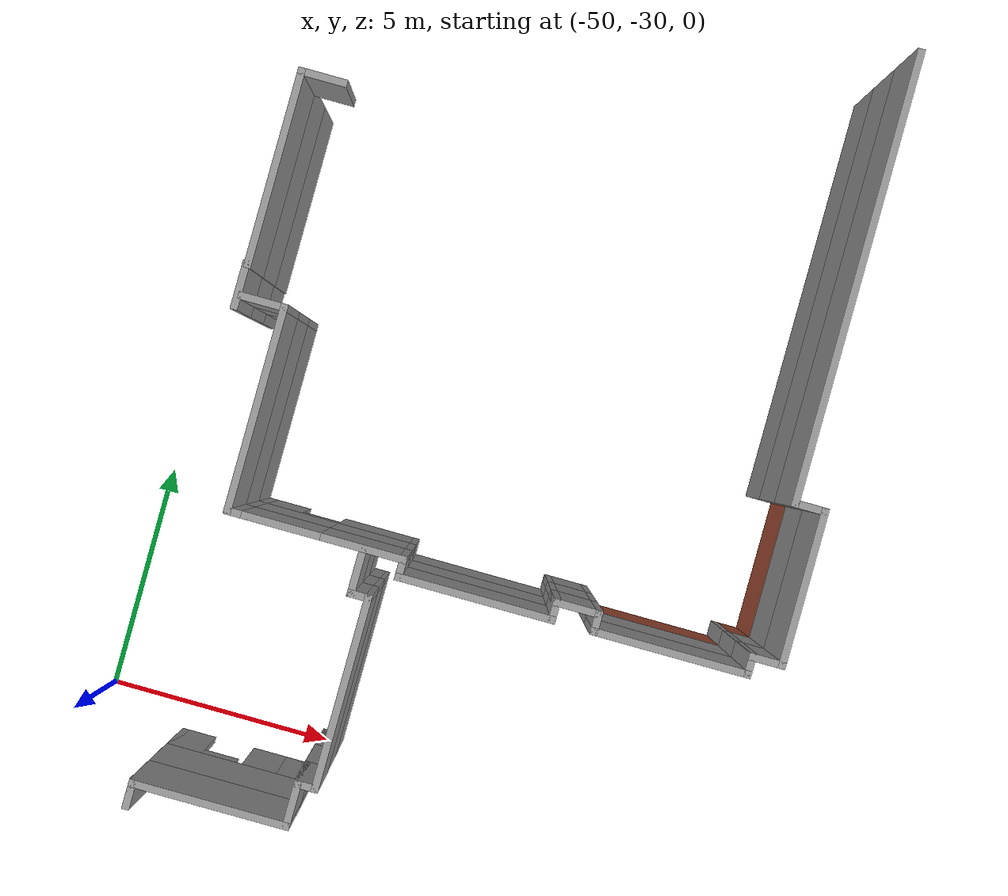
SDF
<sdf version="1.7">
 <model name="mapagazebo">
  <pose>-4.67869 9.01252 0 0 -0 0</pose>
  <link name="Wall_10">
   <collision name="Wall_10_Collision">
    <geometry><box><size>0.75 0.15 2.5</size></box></geometry>
    <pose>0 0 1.25 0 -0 0</pose>
   </collision>
   <visual name="Wall_10_Visual">
    <pose>0 0 1.25 0 -0 0</pose>
    <geometry><box><size>0.75 0.15 2.5</size></box></geometry>
    <material>
     <script><uri>file://media/materials/scripts/gazebo.material</uri><name>Gazebo/Bricks</name></script>
     <ambient>1 1 1 1</ambient>
    </material>
    <meta><layer>0</layer></meta>
   </visual>
   <pose>-32.2224 -34.1047 0 0 -0 3.14159</pose>
  </link>
  <link name="Wall_11">
   <collision name="Wall_11_Collision">
    <geometry><box><size>0.5 0.15 2.5</size></box></geometry>
    <pose>0 0 1.25 0 -0 0</pose>
   </collision>
   <visual name="Wall_11_Visual">
    <pose>0 0 1.25 0 -0 0</pose>
    <geometry><box><size>0.5 0.15 2.5</size></box></geometry>
    <material>
     <script><uri>file://media/materials/scripts/gazebo.material</uri><name>Gazebo/Grey</name></script>
     <ambient>1 1 1 1</ambient>
    </material>
    <meta><layer>0</layer></meta>
   </visual>
   <pose>-32.5224 -34.2797 0 0 -0 -1.5708</pose>
  </link>
  <link name="Wall_12">
   <collision name="Wall_12_Collision">
    <geometry><box><size>3.25 0.15 2.5</size></box></geometry>
    <pose>0 0 1.25 0 -0 0</pose>
   </collision>
   <visual name="Wall_12_Visual">
    <pose>0 0 1.25 0 -0 0</pose>
    <geometry><box><size>3.25 0.15 2.5</size></box></geometry>
    <material>
     <script><uri>file://media/materials/scripts/gazebo.material</uri><name>Gazebo/Bricks</name></script>
     <ambient>1 1 1 1</ambient>
    </material>
    <meta><layer>0</layer></meta>
   </visual>
   <pose>-34.0724 -34.4547 0 0 -0 3.14159</pose>
  </link>
  <link name="Wall_13">
   <collision name="Wall_13_Collision">
    <geometry><box><size>0.5 0.15 2.5</size></box></geometry>
    <pose>0 0 1.25 0 -0 0</pose>
   </collision>
   <visual name="Wall_13_Visual">
    <pose>0 0 1.25 0 -0 0</pose>
    <geometry><box><size>0.5 0.15 2.5</size></box></geometry>
    <material>
     <script><uri>file://media/materials/scripts/gazebo.material</uri><name>Gazebo/Grey</name></script>
     <ambient>1 1 1 1</ambient>
    </material>
    <meta><layer>0</layer></meta>
   </visual>
   <pose>-35.6224 -34.2797 0 0 -0 1.5708</pose>
  </link>
  <link name="Wall_1398">
   <collision name="Wall_1398_Collision">
    <geometry><box><size>9.25 0.15 2.5</size></box></geometry>
    <pose>0 0 1.25 0 -0 0</pose>
   </collision>
   <visual name="Wall_1398_Visual">
    <pose>0 0 1.25 0 -0 0</pose>
    <geometry><box><size>9.25 0.15 2.5</size></box></geometry>
    <material>
     <script><uri>file://media/materials/scripts/gazebo.material</uri><name>Gazebo/Grey</name></script>
     <ambient>1 1 1 1</ambient>
    </material>
    <meta><layer>2</layer></meta>
   </visual>
   <pose>-32.5224 -26.4547 5 0 -0 -1.5708</pose>
  </link>
  <link name="Wall_1399">
   <collision name="Wall_1399_Collision">
    <geometry><box><size>0.75 0.15 2.5</size></box></geometry>
    <pose>0 0 1.25 0 -0 0</pose>
   </collision>
   <visual name="Wall_1399_Visual">
    <pose>0 0 1.25 0 -0 0</pose>
    <geometry><box><size>0.75 0.15 2.5</size></box></geometry>
    <material>
     <script><uri>file://media/materials/scripts/gazebo.material</uri><name>Gazebo/Grey</name></script>
     <ambient>1 1 1 1</ambient>
    </material>
    <meta><layer>2</layer></meta>
   </visual>
   <pose>-32.2224 -31.0047 5 0 -0 0</pose>
  </link>
  <link name="Wall_14">
   <collision name="Wall_14_Collision">
    <geometry><box><size>1 0.15 2.5</size></box></geometry>
    <pose>0 0 1.25 0 -0 0</pose>
   </collision>
   <visual name="Wall_14_Visual">
    <pose>0 0 1.25 0 -0 0</pose>
    <geometry><box><size>1 0.15 2.5</size></box></geometry>
    <material>
     <script><uri>file://media/materials/scripts/gazebo.material</uri><name>Gazebo/Grey</name></script>
     <ambient>1 1 1 1</ambient>
    </material>
    <meta><layer>0</layer></meta>
   </visual>
   <pose>-36.0474 -34.1047 0 0 -0 3.14159</pose>
  </link>
  <link name="Wall_1400">
   <collision name="Wall_1400_Collision">
    <geometry><box><size>3.25 0.15 2.5</size></box></geometry>
    <pose>0 0 1.25 0 -0 0</pose>
   </collision>
   <visual name="Wall_1400_Visual">
    <pose>0 0 1.25 0 -0 0</pose>
    <geometry><box><size>3.25 0.15 2.5</size></box></geometry>
    <material>
     <script><uri>file://media/materials/scripts/gazebo.material</uri><name>Gazebo/Grey</name></script>
     <ambient>1 1 1 1</ambient>
    </material>
    <meta><layer>2</layer></meta>
   </visual>
   <pose>-31.9224 -32.5547 5 0 -0 -1.5708</pose>
  </link>
  <link name="Wall_1401">
   <collision name="Wall_1401_Collision">
    <geometry><box><size>0.75 0.15 2.5</size></box></geometry>
    <pose>0 0 1.25 0 -0 0</pose>
   </collision>
   <visual name="Wall_1401_Visual">
    <pose>0 0 1.25 0 -0 0</pose>
    <geometry><box><size>0.75 0.15 2.5</size></box></geometry>
    <material>
     <script><uri>file://media/materials/scripts/gazebo.material</uri><name>Gazebo/Grey</name></script>
     <ambient>1 1 1 1</ambient>
    </material>
    <meta><layer>2</layer></meta>
   </visual>
   <pose>-32.2224 -34.1047 5 0 -0 3.14159</pose>
  </link>
  <link name="Wall_1402">
   <collision name="Wall_1402_Collision">
    <geometry><box><size>0.5 0.15 2.5</size></box></geometry>
    <pose>0 0 1.25 0 -0 0</pose>
   </collision>
   <visual name="Wall_1402_Visual">
    <pose>0 0 1.25 0 -0 0</pose>
    <geometry><box><size>0.5 0.15 2.5</size></box></geometry>
    <material>
     <script><uri>file://media/materials/scripts/gazebo.material</uri><name>Gazebo/Grey</name></script>
     <ambient>1 1 1 1</ambient>
    </material>
    <meta><layer>2</layer></meta>
   </visual>
   <pose>-32.5224 -34.2797 5 0 -0 -1.5708</pose>
  </link>
  <link name="Wall_1403">
   <collision name="Wall_1403_Collision">
    <geometry><box><size>3.25 0.15 2.5</size></box></geometry>
    <pose>0 0 1.25 0 -0 0</pose>
   </collision>
   <visual name="Wall_1403_Visual">
    <pose>0 0 1.25 0 -0 0</pose>
    <geometry><box><size>3.25 0.15 2.5</size></box></geometry>
    <material>
     <script><uri>file://media/materials/scripts/gazebo.material</uri><name>Gazebo/Grey</name></script>
     <ambient>1 1 1 1</ambient>
    </material>
    <meta><layer>2</layer></meta>
   </visual>
   <pose>-34.0724 -34.4547 5 0 -0 3.14159</pose>
  </link>
  <link name="Wall_1404">
   <collision name="Wall_1404_Collision">
    <geometry><box><size>0.5 0.15 2.5</size></box></geometry>
    <pose>0 0 1.25 0 -0 0</pose>
   </collision>
   <visual name="Wall_1404_Visual">
    <pose>0 0 1.25 0 -0 0</pose>
    <geometry><box><size>0.5 0.15 2.5</size></box></geometry>
    <material>
     <script><uri>file://media/materials/scripts/gazebo.material</uri><name>Gazebo/Grey</name></script>
     <ambient>1 1 1 1</ambient>
    </material>
    <meta><layer>2</layer></meta>
   </visual>
   <pose>-35.6224 -34.2797 5 0 -0 1.5708</pose>
  </link>
  <link name="Wall_1405">
   <collision name="Wall_1405_Collision">
    <geometry><box><size>1 0.15 2.5</size></box></geometry>
    <pose>0 0 1.25 0 -0 0</pose>
   </collision>
   <visual name="Wall_1405_Visual">
    <pose>0 0 1.25 0 -0 0</pose>
    <geometry><box><size>1 0.15 2.5</size></box></geometry>
    <material>
     <script><uri>file://media/materials/scripts/gazebo.material</uri><name>Gazebo/Grey</name></script>
     <ambient>1 1 1 1</ambient>
    </material>
    <meta><layer>2</layer></meta>
   </visual>
   <pose>-36.0474 -34.1047 5 0 -0 3.14159</pose>
  </link>
  <link name="Wall_1406">
   <collision name="Wall_1406_Collision">
    <geometry><box><size>0.5 0.15 2.5</size></box></geometry>
    <pose>0 0 1.25 0 -0 0</pose>
   </collision>
   <visual name="Wall_1406_Visual">
    <pose>0 0 1.25 0 -0 0</pose>
    <geometry><box><size>0.5 0.15 2.5</size></box></geometry>
    <material>
     <script><uri>file://media/materials/scripts/gazebo.material</uri><name>Gazebo/Grey</name></script>
     <ambient>1 1 1 1</ambient>
    </material>
    <meta><layer>2</layer></meta>
   </visual>
   <pose>-36.4724 -34.2797 5 0 -0 -1.5708</pose>
  </link>
  <link name="Wall_1407">
   <collision name="Wall_1407_Collision">
    <geometry><box><size>3.25 0.15 2.5</size></box></geometry>
    <pose>0 0 1.25 0 -0 0</pose>
   </collision>
   <visual name="Wall_1407_Visual">
    <pose>0 0 1.25 0 -0 0</pose>
    <geometry><box><size>3.25 0.15 2.5</size></box></geometry>
    <material>
     <script><uri>file://media/materials/scripts/gazebo.material</uri><name>Gazebo/Grey</name></script>
     <ambient>1 1 1 1</ambient>
    </material>
    <meta><layer>2</layer></meta>
   </visual>
   <pose>-38.0224 -34.4547 5 0 -0 3.14159</pose>
  </link>
  <link name="Wall_1408">
   <collision name="Wall_1408_Collision">
    <geometry><box><size>0.5 0.15 2.5</size></box></geometry>
    <pose>0 0 1.25 0 -0 0</pose>
   </collision>
   <visual name="Wall_1408_Visual">
    <pose>0 0 1.25 0 -0 0</pose>
    <geometry><box><size>0.5 0.15 2.5</size></box></geometry>
    <material>
     <script><uri>file://media/materials/scripts/gazebo.material</uri><name>Gazebo/Grey</name></script>
     <ambient>1 1 1 1</ambient>
    </material>
    <meta><layer>2</layer></meta>
   </visual>
   <pose>-39.5724 -34.2797 5 0 -0 1.5708</pose>
  </link>
  <link name="Wall_1409">
   <collision name="Wall_1409_Collision">
    <geometry><box><size>1.75 0.15 2.5</size></box></geometry>
    <pose>0 0 1.25 0 -0 0</pose>
   </collision>
   <visual name="Wall_1409_Visual">
    <pose>0 0 1.25 0 -0 0</pose>
    <geometry><box><size>1.75 0.15 2.5</size></box></geometry>
    <material>
     <script><uri>file://media/materials/scripts/gazebo.material</uri><name>Gazebo/Grey</name></script>
     <ambient>1 1 1 1</ambient>
    </material>
    <meta><layer>2</layer></meta>
   </visual>
   <pose>-40.3724 -34.1047 5 0 -0 3.14159</pose>
  </link>
  <link name="Wall_1410">
   <collision name="Wall_1410_Collision">
    <geometry><box><size>1.75 0.15 2.5</size></box></geometry>
    <pose>0 0 1.25 0 -0 0</pose>
   </collision>
   <visual name="Wall_1410_Visual">
    <pose>0 0 1.25 0 -0 0</pose>
    <geometry><box><size>1.75 0.15 2.5</size></box></geometry>
    <material>
     <script><uri>file://media/materials/scripts/gazebo.material</uri><name>Gazebo/Grey</name></script>
     <ambient>1 1 1 1</ambient>
    </material>
    <meta><layer>2</layer></meta>
   </visual>
   <pose>-41.9724 -34.1047 5 0 -0 3.14159</pose>
  </link>
  <link name="Wall_1411">
   <collision name="Wall_1411_Collision">
    <geometry><box><size>0.5 0.15 2.5</size></box></geometry>
    <pose>0 0 1.25 0 -0 0</pose>
   </collision>
   <visual name="Wall_1411_Visual">
    <pose>0 0 1.25 0 -0 0</pose>
    <geometry><box><size>0.5 0.15 2.5</size></box></geometry>
    <material>
     <script><uri>file://media/materials/scripts/gazebo.material</uri><name>Gazebo/Grey</name></script>
     <ambient>1 1 1 1</ambient>
    </material>
    <meta><layer>2</layer></meta>
   </visual>
   <pose>-42.9474 -34.1047 5 0 -0 3.14159</pose>
  </link>
  <link name="Wall_1412">
   <collision name="Wall_1412_Collision">
    <geometry><box><size>4.25 0.15 2.5</size></box></geometry>
    <pose>0 0 1.25 0 -0 0</pose>
   </collision>
   <visual name="Wall_1412_Visual">
    <pose>0 0 1.25 0 -0 0</pose>
    <geometry><box><size>4.25 0.15 2.5</size></box></geometry>
    <material>
     <script><uri>file://media/materials/scripts/gazebo.material</uri><name>Gazebo/Grey</name></script>
     <ambient>1 1 1 1</ambient>
    </material>
    <meta><layer>2</layer></meta>
   </visual>
   <pose>-43.1224 -32.0547 5 0 -0 1.5708</pose>
  </link>
  <link name="Wall_1413">
   <collision name="Wall_1413_Collision">
    <geometry><box><size>1 0.15 2.5</size></box></geometry>
    <pose>0 0 1.25 0 -0 0</pose>
   </collision>
   <visual name="Wall_1413_Visual">
    <pose>0 0 1.25 0 -0 0</pose>
    <geometry><box><size>1 0.15 2.5</size></box></geometry>
    <material>
     <script><uri>file://media/materials/scripts/gazebo.material</uri><name>Gazebo/Grey</name></script>
     <ambient>1 1 1 1</ambient>
    </material>
    <meta><layer>2</layer></meta>
   </visual>
   <pose>-43.5474 -30.0047 5 0 -0 3.14159</pose>
  </link>
  <link name="Wall_1414">
   <collision name="Wall_1414_Collision">
    <geometry><box><size>1 0.15 2.5</size></box></geometry>
    <pose>0 0 1.25 0 -0 0</pose>
   </collision>
   <visual name="Wall_1414_Visual">
    <pose>0 0 1.25 0 -0 0</pose>
    <geometry><box><size>1 0.15 2.5</size></box></geometry>
    <material>
     <script><uri>file://media/materials/scripts/gazebo.material</uri><name>Gazebo/Grey</name></script>
     <ambient>1 1 1 1</ambient>
    </material>
    <meta><layer>2</layer></meta>
   </visual>
   <pose>-44.0592 -29.8047 5 0 -0 1.5708</pose>
  </link>
  <link name="Wall_1415">
   <collision name="Wall_1415_Collision">
    <geometry><box><size>4.04328 0.15 2.5</size></box></geometry>
    <pose>0 0 1.25 0 -0 0</pose>
   </collision>
   <visual name="Wall_1415_Visual">
    <pose>0 0 1.25 0 -0 0</pose>
    <geometry><box><size>4.04328 0.15 2.5</size></box></geometry>
    <material>
     <script><uri>file://media/materials/scripts/gazebo.material</uri><name>Gazebo/Grey</name></script>
     <ambient>1 1 1 1</ambient>
    </material>
    <meta><layer>2</layer></meta>
   </visual>
   <pose>-44.0299 -27.433 5 0 -0 1.5708</pose>
  </link>
  <link name="Wall_1416">
   <collision name="Wall_1416_Collision">
    <geometry><box><size>1 0.15 2.5</size></box></geometry>
    <pose>0 0 1.25 0 -0 0</pose>
   </collision>
   <visual name="Wall_1416_Visual">
    <pose>0 0 1.25 0 -0 0</pose>
    <geometry><box><size>1 0.15 2.5</size></box></geometry>
    <material>
     <script><uri>file://media/materials/scripts/gazebo.material</uri><name>Gazebo/Grey</name></script>
     <ambient>1 1 1 1</ambient>
    </material>
    <meta><layer>2</layer></meta>
   </visual>
   <pose>-43.6049 -25.4864 5 0 -0 0</pose>
  </link>
  <link name="Wall_1452">
   <collision name="Wall_1452_Collision">
    <geometry><box><size>0.5 0.15 2.5</size></box></geometry>
    <pose>0 0 1.25 0 -0 0</pose>
   </collision>
   <visual name="Wall_1452_Visual">
    <pose>0 0 1.25 0 -0 0</pose>
    <geometry><box><size>0.5 0.15 2.5</size></box></geometry>
    <material>
     <script><uri>file://media/materials/scripts/gazebo.material</uri><name>Gazebo/Grey</name></script>
     <ambient>1 1 1 1</ambient>
    </material>
    <meta><layer>2</layer></meta>
   </visual>
   <pose>-43.4795 -39.9853 5 0 -0 1.5708</pose>
  </link>
  <link name="Wall_1453">
   <collision name="Wall_1453_Collision">
    <geometry><box><size>0.25 0.15 2.5</size></box></geometry>
    <pose>0 0 1.25 0 -0 0</pose>
   </collision>
   <visual name="Wall_1453_Visual">
    <pose>0 0 1.25 0 -0 0</pose>
    <geometry><box><size>0.25 0.15 2.5</size></box></geometry>
    <material>
     <script><uri>file://media/materials/scripts/gazebo.material</uri><name>Gazebo/Grey</name></script>
     <ambient>1 1 1 1</ambient>
    </material>
    <meta><layer>2</layer></meta>
   </visual>
   <pose>-43.4795 -39.7603 5 0 -0 1.5708</pose>
  </link>
  <link name="Wall_1454">
   <collision name="Wall_1454_Collision">
    <geometry><box><size>3.25 0.15 2.5</size></box></geometry>
    <pose>0 0 1.25 0 -0 0</pose>
   </collision>
   <visual name="Wall_1454_Visual">
    <pose>0 0 1.25 0 -0 0</pose>
    <geometry><box><size>3.25 0.15 2.5</size></box></geometry>
    <material>
     <script><uri>file://media/materials/scripts/gazebo.material</uri><name>Gazebo/Grey</name></script>
     <ambient>1 1 1 1</ambient>
    </material>
    <meta><layer>2</layer></meta>
   </visual>
   <pose>-41.9295 -39.7103 5 0 -0 0</pose>
  </link>
  <link name="Wall_1455">
   <collision name="Wall_1455_Collision">
    <geometry><box><size>1 0.15 2.5</size></box></geometry>
    <pose>0 0 1.25 0 -0 0</pose>
   </collision>
   <visual name="Wall_1455_Visual">
    <pose>0 0 1.25 0 -0 0</pose>
    <geometry><box><size>1 0.15 2.5</size></box></geometry>
    <material>
     <script><uri>file://media/materials/scripts/gazebo.material</uri><name>Gazebo/Grey</name></script>
     <ambient>1 1 1 1</ambient>
    </material>
    <meta><layer>2</layer></meta>
   </visual>
   <pose>-40.3795 -39.2853 5 0 -0 1.5708</pose>
  </link>
  <link name="Wall_1456">
   <collision name="Wall_1456_Collision">
    <geometry><box><size>0.5 0.15 2.5</size></box></geometry>
    <pose>0 0 1.25 0 -0 0</pose>
   </collision>
   <visual name="Wall_1456_Visual">
    <pose>0 0 1.25 0 -0 0</pose>
    <geometry><box><size>0.5 0.15 2.5</size></box></geometry>
    <material>
     <script><uri>file://media/materials/scripts/gazebo.material</uri><name>Gazebo/Grey</name></script>
     <ambient>1 1 1 1</ambient>
    </material>
    <meta><layer>2</layer></meta>
   </visual>
   <pose>-40.2045 -38.8603 5 0 -0 0</pose>
  </link>
  <link name="Wall_1457">
   <collision name="Wall_1457_Collision">
    <geometry><box><size>4 0.15 2.5</size></box></geometry>
    <pose>0 0 1.25 0 -0 0</pose>
   </collision>
   <visual name="Wall_1457_Visual">
    <pose>0 0 1.25 0 -0 0</pose>
    <geometry><box><size>4 0.15 2.5</size></box></geometry>
    <material>
     <script><uri>file://media/materials/scripts/gazebo.material</uri><name>Gazebo/Grey</name></script>
     <ambient>1 1 1 1</ambient>
    </material>
    <meta><layer>2</layer></meta>
   </visual>
   <pose>-40.0295 -36.9353 5 0 -0 1.5708</pose>
  </link>
  <link name="Wall_1458">
   <collision name="Wall_1458_Collision">
    <geometry><box><size>0.5 0.15 2.5</size></box></geometry>
    <pose>0 0 1.25 0 -0 0</pose>
   </collision>
   <visual name="Wall_1458_Visual">
    <pose>0 0 1.25 0 -0 0</pose>
    <geometry><box><size>0.5 0.15 2.5</size></box></geometry>
    <material>
     <script><uri>file://media/materials/scripts/gazebo.material</uri><name>Gazebo/Grey</name></script>
     <ambient>1 1 1 1</ambient>
    </material>
    <meta><layer>2</layer></meta>
   </visual>
   <pose>-40.2045 -35.0103 5 0 -0 3.14159</pose>
  </link>
  <link name="Wall_1459">
   <collision name="Wall_1459_Collision">
    <geometry><box><size>1 0.15 2.5</size></box></geometry>
    <pose>0 0 1.25 0 -0 0</pose>
   </collision>
   <visual name="Wall_1459_Visual">
    <pose>0 0 1.25 0 -0 0</pose>
    <geometry><box><size>1 0.15 2.5</size></box></geometry>
    <material>
     <script><uri>file://media/materials/scripts/gazebo.material</uri><name>Gazebo/Grey</name></script>
     <ambient>1 1 1 1</ambient>
    </material>
    <meta><layer>2</layer></meta>
   </visual>
   <pose>-40.3795 -34.5853 5 0 -0 1.5708</pose>
  </link>
  <link name="Wall_15">
   <collision name="Wall_15_Collision">
    <geometry><box><size>0.5 0.15 2.5</size></box></geometry>
    <pose>0 0 1.25 0 -0 0</pose>
   </collision>
   <visual name="Wall_15_Visual">
    <pose>0 0 1.25 0 -0 0</pose>
    <geometry><box><size>0.5 0.15 2.5</size></box></geometry>
    <material>
     <script><uri>file://media/materials/scripts/gazebo.material</uri><name>Gazebo/Grey</name></script>
     <ambient>1 1 1 1</ambient>
    </material>
    <meta><layer>0</layer></meta>
   </visual>
   <pose>-36.4724 -34.2797 0 0 -0 -1.5708</pose>
  </link>
  <link name="Wall_16">
   <collision name="Wall_16_Collision">
    <geometry><box><size>3.25 0.15 2.5</size></box></geometry>
    <pose>0 0 1.25 0 -0 0</pose>
   </collision>
   <visual name="Wall_16_Visual">
    <pose>0 0 1.25 0 -0 0</pose>
    <geometry><box><size>3.25 0.15 2.5</size></box></geometry>
    <material>
     <script><uri>file://media/materials/scripts/gazebo.material</uri><name>Gazebo/Grey</name></script>
     <ambient>1 1 1 1</ambient>
    </material>
    <meta><layer>0</layer></meta>
   </visual>
   <pose>-38.0224 -34.4547 0 0 -0 3.14159</pose>
  </link>
  <link name="Wall_17">
   <collision name="Wall_17_Collision">
    <geometry><box><size>0.5 0.15 2.5</size></box></geometry>
    <pose>0 0 1.25 0 -0 0</pose>
   </collision>
   <visual name="Wall_17_Visual">
    <pose>0 0 1.25 0 -0 0</pose>
    <geometry><box><size>0.5 0.15 2.5</size></box></geometry>
    <material>
     <script><uri>file://media/materials/scripts/gazebo.material</uri><name>Gazebo/Grey</name></script>
     <ambient>1 1 1 1</ambient>
    </material>
    <meta><layer>0</layer></meta>
   </visual>
   <pose>-39.5724 -34.2797 0 0 -0 1.5708</pose>
  </link>
  <link name="Wall_18">
   <collision name="Wall_18_Collision">
    <geometry><box><size>1.75 0.15 2.5</size></box></geometry>
    <pose>0 0 1.25 0 -0 0</pose>
   </collision>
   <visual name="Wall_18_Visual">
    <pose>0 0 1.25 0 -0 0</pose>
    <geometry><box><size>1.75 0.15 2.5</size></box></geometry>
    <material>
     <script><uri>file://media/materials/scripts/gazebo.material</uri><name>Gazebo/Grey</name></script>
     <ambient>1 1 1 1</ambient>
    </material>
    <meta><layer>0</layer></meta>
   </visual>
   <pose>-40.3724 -34.1047 0 0 -0 3.14159</pose>
  </link>
  <link name="Wall_19">
   <pose>-41.9724 -34.1047 0 0 -0 3.14159</pose>
   <visual name="Wall_19_Visual_0">
    <pose>-0.836227 0 1.25 0 -0 0</pose>
    <geometry><box><size>0.077546 0.15 2.5</size></box></geometry>
    <material>
     <script><uri>file://media/materials/scripts/gazebo.material</uri><name>Gazebo/Grey</name></script>
     <ambient>1 1 1 1</ambient>
    </material>
    <meta><layer>0</layer></meta>
   </visual>
   <collision name="Wall_19_Collision_0">
    <geometry><box><size>0.077546 0.15 2.5</size></box></geometry>
    <pose>-0.836227 0 1.25 0 -0 0</pose>
   </collision>
   <visual name="Wall_19_Visual_1">
    <pose>0.488773 0 1.25 0 -0 0</pose>
    <geometry><box><size>0.772454 0.15 2.5</size></box></geometry>
    <material>
     <script><uri>file://media/materials/scripts/gazebo.material</uri><name>Gazebo/Grey</name></script>
     <ambient>1 1 1 1</ambient>
    </material>
    <meta><layer>0</layer></meta>
   </visual>
   <collision name="Wall_19_Collision_1">
    <geometry><box><size>0.772454 0.15 2.5</size></box></geometry>
    <pose>0.488773 0 1.25 0 -0 0</pose>
   </collision>
   <visual name="Wall_19_Visual_2">
    <pose>-0.357532 0 2.25 0 -0 0</pose>
    <geometry><box><size>0.879845 0.15 0.5</size></box></geometry>
    <material>
     <script><uri>file://media/materials/scripts/gazebo.material</uri><name>Gazebo/Grey</name></script>
     <ambient>1 1 1 1</ambient>
    </material>
    <meta><layer>0</layer></meta>
   </visual>
   <collision name="Wall_19_Collision_2">
    <geometry><box><size>0.879845 0.15 0.5</size></box></geometry>
    <pose>-0.357532 0 2.25 0 -0 0</pose>
   </collision>
  </link>
  <link name="Wall_20">
   <collision name="Wall_20_Collision">
    <geometry><box><size>0.5 0.15 2.5</size></box></geometry>
    <pose>0 0 1.25 0 -0 0</pose>
   </collision>
   <visual name="Wall_20_Visual">
    <pose>0 0 1.25 0 -0 0</pose>
    <geometry><box><size>0.5 0.15 2.5</size></box></geometry>
    <material>
     <script><uri>file://media/materials/scripts/gazebo.material</uri><name>Gazebo/Grey</name></script>
     <ambient>1 1 1 1</ambient>
    </material>
    <meta><layer>0</layer></meta>
   </visual>
   <pose>-42.9474 -34.1047 0 0 -0 3.14159</pose>
  </link>
  <link name="Wall_21">
   <collision name="Wall_21_Collision">
    <geometry><box><size>4.25 0.15 2.5</size></box></geometry>
    <pose>0 0 1.25 0 -0 0</pose>
   </collision>
   <visual name="Wall_21_Visual">
    <pose>0 0 1.25 0 -0 0</pose>
    <geometry><box><size>4.25 0.15 2.5</size></box></geometry>
    <material>
     <script><uri>file://media/materials/scripts/gazebo.material</uri><name>Gazebo/Grey</name></script>
     <ambient>1 1 1 1</ambient>
    </material>
    <meta><layer>0</layer></meta>
   </visual>
   <pose>-43.1224 -32.0547 0 0 -0 1.5708</pose>
  </link>
  <link name="Wall_22">
   <collision name="Wall_22_Collision">
    <geometry><box><size>1 0.15 2.5</size></box></geometry>
    <pose>0 0 1.25 0 -0 0</pose>
   </collision>
   <visual name="Wall_22_Visual">
    <pose>0 0 1.25 0 -0 0</pose>
    <geometry><box><size>1 0.15 2.5</size></box></geometry>
    <material>
     <script><uri>file://media/materials/scripts/gazebo.material</uri><name>Gazebo/Grey</name></script>
     <ambient>1 1 1 1</ambient>
    </material>
    <meta><layer>0</layer></meta>
   </visual>
   <pose>-43.5474 -30.0047 0 0 -0 3.14159</pose>
  </link>
  <link name="Wall_24">
   <collision name="Wall_24_Collision">
    <geometry><box><size>1 0.15 2.5</size></box></geometry>
    <pose>0 0 1.25 0 -0 0</pose>
   </collision>
   <visual name="Wall_24_Visual">
    <pose>0 0 1.25 0 -0 0</pose>
    <geometry><box><size>1 0.15 2.5</size></box></geometry>
    <material>
     <script><uri>file://media/materials/scripts/gazebo.material</uri><name>Gazebo/Grey</name></script>
     <ambient>1 1 1 1</ambient>
    </material>
    <meta><layer>0</layer></meta>
   </visual>
   <pose>-44.0592 -29.8047 0 0 -0 1.5708</pose>
  </link>
  <link name="Wall_26">
   <collision name="Wall_26_Collision">
    <geometry><box><size>4.04328 0.15 2.5</size></box></geometry>
    <pose>0 0 1.25 0 -0 0</pose>
   </collision>
   <visual name="Wall_26_Visual">
    <pose>0 0 1.25 0 -0 0</pose>
    <geometry><box><size>4.04328 0.15 2.5</size></box></geometry>
    <material>
     <script><uri>file://media/materials/scripts/gazebo.material</uri><name>Gazebo/Grey</name></script>
     <ambient>1 1 1 1</ambient>
    </material>
    <meta><layer>0</layer></meta>
   </visual>
   <pose>-44.0299 -27.433 0 0 -0 1.5708</pose>
  </link>
  <link name="Wall_6">
   <collision name="Wall_6_Collision">
    <geometry><box><size>9.25 0.15 2.5</size></box></geometry>
    <pose>0 0 1.25 0 -0 0</pose>
   </collision>
   <visual name="Wall_6_Visual">
    <pose>0 0 1.25 0 -0 0</pose>
    <geometry><box><size>9.25 0.15 2.5</size></box></geometry>
    <material>
     <script><uri>file://media/materials/scripts/gazebo.material</uri><name>Gazebo/Grey</name></script>
     <ambient>1 1 1 1</ambient>
    </material>
    <meta><layer>0</layer></meta>
   </visual>
   <pose>-32.5224 -26.4547 0 0 -0 -1.5708</pose>
  </link>
  <link name="Wall_7">
   <collision name="Wall_7_Collision">
    <geometry><box><size>0.75 0.15 2.5</size></box></geometry>
    <pose>0 0 1.25 0 -0 0</pose>
   </collision>
   <visual name="Wall_7_Visual">
    <pose>0 0 1.25 0 -0 0</pose>
    <geometry><box><size>0.75 0.15 2.5</size></box></geometry>
    <material>
     <script><uri>file://media/materials/scripts/gazebo.material</uri><name>Gazebo/Grey</name></script>
     <ambient>1 1 1 1</ambient>
    </material>
    <meta><layer>0</layer></meta>
   </visual>
   <pose>-32.2224 -31.0047 0 0 -0 0</pose>
  </link>
  <link name="Wall_77">
   <collision name="Wall_77_Collision">
    <geometry><box><size>0.5 0.15 2.5</size></box></geometry>
    <pose>0 0 1.25 0 -0 0</pose>
   </collision>
   <visual name="Wall_77_Visual">
    <pose>0 0 1.25 0 -0 0</pose>
    <geometry><box><size>0.5 0.15 2.5</size></box></geometry>
    <material>
     <script><uri>file://media/materials/scripts/gazebo.material</uri><name>Gazebo/Grey</name></script>
     <ambient>1 1 1 1</ambient>
    </material>
    <meta><layer>0</layer></meta>
   </visual>
   <pose>-43.4795 -39.9853 0 0 -0 1.5708</pose>
  </link>
  <link name="Wall_774">
   <collision name="Wall_774_Collision">
    <geometry><box><size>9.25 0.15 2.5</size></box></geometry>
    <pose>0 0 1.25 0 -0 0</pose>
   </collision>
   <visual name="Wall_774_Visual">
    <pose>0 0 1.25 0 -0 0</pose>
    <geometry><box><size>9.25 0.15 2.5</size></box></geometry>
    <material>
     <script><uri>file://media/materials/scripts/gazebo.material</uri><name>Gazebo/Grey</name></script>
     <ambient>1 1 1 1</ambient>
    </material>
    <meta><layer>1</layer></meta>
   </visual>
   <pose>-32.5224 -26.4547 2.5 0 -0 -1.5708</pose>
  </link>
  <link name="Wall_775">
   <collision name="Wall_775_Collision">
    <geometry><box><size>0.75 0.15 2.5</size></box></geometry>
    <pose>0 0 1.25 0 -0 0</pose>
   </collision>
   <visual name="Wall_775_Visual">
    <pose>0 0 1.25 0 -0 0</pose>
    <geometry><box><size>0.75 0.15 2.5</size></box></geometry>
    <material>
     <script><uri>file://media/materials/scripts/gazebo.material</uri><name>Gazebo/Grey</name></script>
     <ambient>1 1 1 1</ambient>
    </material>
    <meta><layer>1</layer></meta>
   </visual>
   <pose>-32.2224 -31.0047 2.5 0 -0 0</pose>
  </link>
  <link name="Wall_776">
   <collision name="Wall_776_Collision">
    <geometry><box><size>3.25 0.15 2.5</size></box></geometry>
    <pose>0 0 1.25 0 -0 0</pose>
   </collision>
   <visual name="Wall_776_Visual">
    <pose>0 0 1.25 0 -0 0</pose>
    <geometry><box><size>3.25 0.15 2.5</size></box></geometry>
    <material>
     <script><uri>file://media/materials/scripts/gazebo.material</uri><name>Gazebo/Grey</name></script>
     <ambient>1 1 1 1</ambient>
    </material>
    <meta><layer>1</layer></meta>
   </visual>
   <pose>-31.9224 -32.5547 2.5 0 -0 -1.5708</pose>
  </link>
  <link name="Wall_777">
   <collision name="Wall_777_Collision">
    <geometry><box><size>0.75 0.15 2.5</size></box></geometry>
    <pose>0 0 1.25 0 -0 0</pose>
   </collision>
   <visual name="Wall_777_Visual">
    <pose>0 0 1.25 0 -0 0</pose>
    <geometry><box><size>0.75 0.15 2.5</size></box></geometry>
    <material>
     <script><uri>file://media/materials/scripts/gazebo.material</uri><name>Gazebo/Grey</name></script>
     <ambient>1 1 1 1</ambient>
    </material>
    <meta><layer>1</layer></meta>
   </visual>
   <pose>-32.2224 -34.1047 2.5 0 -0 3.14159</pose>
  </link>
  <link name="Wall_778">
   <collision name="Wall_778_Collision">
    <geometry><box><size>0.5 0.15 2.5</size></box></geometry>
    <pose>0 0 1.25 0 -0 0</pose>
   </collision>
   <visual name="Wall_778_Visual">
    <pose>0 0 1.25 0 -0 0</pose>
    <geometry><box><size>0.5 0.15 2.5</size></box></geometry>
    <material>
     <script><uri>file://media/materials/scripts/gazebo.material</uri><name>Gazebo/Grey</name></script>
     <ambient>1 1 1 1</ambient>
    </material>
    <meta><layer>1</layer></meta>
   </visual>
   <pose>-32.5224 -34.2797 2.5 0 -0 -1.5708</pose>
  </link>
  <link name="Wall_779">
   <collision name="Wall_779_Collision">
    <geometry><box><size>3.25 0.15 2.5</size></box></geometry>
    <pose>0 0 1.25 0 -0 0</pose>
   </collision>
   <visual name="Wall_779_Visual">
    <pose>0 0 1.25 0 -0 0</pose>
    <geometry><box><size>3.25 0.15 2.5</size></box></geometry>
    <material>
     <script><uri>file://media/materials/scripts/gazebo.material</uri><name>Gazebo/Grey</name></script>
     <ambient>1 1 1 1</ambient>
    </material>
    <meta><layer>1</layer></meta>
   </visual>
   <pose>-34.0724 -34.4547 2.5 0 -0 3.14159</pose>
  </link>
  <link name="Wall_78">
   <collision name="Wall_78_Collision">
    <geometry><box><size>0.25 0.15 2.5</size></box></geometry>
    <pose>0 0 1.25 0 -0 0</pose>
   </collision>
   <visual name="Wall_78_Visual">
    <pose>0 0 1.25 0 -0 0</pose>
    <geometry><box><size>0.25 0.15 2.5</size></box></geometry>
    <material>
     <script><uri>file://media/materials/scripts/gazebo.material</uri><name>Gazebo/Grey</name></script>
     <ambient>1 1 1 1</ambient>
    </material>
    <meta><layer>0</layer></meta>
   </visual>
   <pose>-43.4795 -39.7603 0 0 -0 1.5708</pose>
  </link>
  <link name="Wall_780">
   <collision name="Wall_780_Collision">
    <geometry><box><size>0.5 0.15 2.5</size></box></geometry>
    <pose>0 0 1.25 0 -0 0</pose>
   </collision>
   <visual name="Wall_780_Visual">
    <pose>0 0 1.25 0 -0 0</pose>
    <geometry><box><size>0.5 0.15 2.5</size></box></geometry>
    <material>
     <script><uri>file://media/materials/scripts/gazebo.material</uri><name>Gazebo/Grey</name></script>
     <ambient>1 1 1 1</ambient>
    </material>
    <meta><layer>1</layer></meta>
   </visual>
   <pose>-35.6224 -34.2797 2.5 0 -0 1.5708</pose>
  </link>
  <link name="Wall_781">
   <collision name="Wall_781_Collision">
    <geometry><box><size>1 0.15 2.5</size></box></geometry>
    <pose>0 0 1.25 0 -0 0</pose>
   </collision>
   <visual name="Wall_781_Visual">
    <pose>0 0 1.25 0 -0 0</pose>
    <geometry><box><size>1 0.15 2.5</size></box></geometry>
    <material>
     <script><uri>file://media/materials/scripts/gazebo.material</uri><name>Gazebo/Grey</name></script>
     <ambient>1 1 1 1</ambient>
    </material>
    <meta><layer>1</layer></meta>
   </visual>
   <pose>-36.0474 -34.1047 2.5 0 -0 3.14159</pose>
  </link>
  <link name="Wall_782">
   <collision name="Wall_782_Collision">
    <geometry><box><size>0.5 0.15 2.5</size></box></geometry>
    <pose>0 0 1.25 0 -0 0</pose>
   </collision>
   <visual name="Wall_782_Visual">
    <pose>0 0 1.25 0 -0 0</pose>
    <geometry><box><size>0.5 0.15 2.5</size></box></geometry>
    <material>
     <script><uri>file://media/materials/scripts/gazebo.material</uri><name>Gazebo/Grey</name></script>
     <ambient>1 1 1 1</ambient>
    </material>
    <meta><layer>1</layer></meta>
   </visual>
   <pose>-36.4724 -34.2797 2.5 0 -0 -1.5708</pose>
  </link>
  <link name="Wall_783">
   <collision name="Wall_783_Collision">
    <geometry><box><size>3.25 0.15 2.5</size></box></geometry>
    <pose>0 0 1.25 0 -0 0</pose>
   </collision>
   <visual name="Wall_783_Visual">
    <pose>0 0 1.25 0 -0 0</pose>
    <geometry><box><size>3.25 0.15 2.5</size></box></geometry>
    <material>
     <script><uri>file://media/materials/scripts/gazebo.material</uri><name>Gazebo/Grey</name></script>
     <ambient>1 1 1 1</ambient>
    </material>
    <meta><layer>1</layer></meta>
   </visual>
   <pose>-38.0224 -34.4547 2.5 0 -0 3.14159</pose>
  </link>
  <link name="Wall_784">
   <collision name="Wall_784_Collision">
    <geometry><box><size>0.5 0.15 2.5</size></box></geometry>
    <pose>0 0 1.25 0 -0 0</pose>
   </collision>
   <visual name="Wall_784_Visual">
    <pose>0 0 1.25 0 -0 0</pose>
    <geometry><box><size>0.5 0.15 2.5</size></box></geometry>
    <material>
     <script><uri>file://media/materials/scripts/gazebo.material</uri><name>Gazebo/Grey</name></script>
     <ambient>1 1 1 1</ambient>
    </material>
    <meta><layer>1</layer></meta>
   </visual>
   <pose>-39.5724 -34.2797 2.5 0 -0 1.5708</pose>
  </link>
  <link name="Wall_785">
   <collision name="Wall_785_Collision">
    <geometry><box><size>1.75 0.15 2.5</size></box></geometry>
    <pose>0 0 1.25 0 -0 0</pose>
   </collision>
   <visual name="Wall_785_Visual">
    <pose>0 0 1.25 0 -0 0</pose>
    <geometry><box><size>1.75 0.15 2.5</size></box></geometry>
    <material>
     <script><uri>file://media/materials/scripts/gazebo.material</uri><name>Gazebo/Grey</name></script>
     <ambient>1 1 1 1</ambient>
    </material>
    <meta><layer>1</layer></meta>
   </visual>
   <pose>-40.3724 -34.1047 2.5 0 -0 3.14159</pose>
  </link>
  <link name="Wall_786">
   <collision name="Wall_786_Collision">
    <geometry><box><size>1.75 0.15 2.5</size></box></geometry>
    <pose>0 0 1.25 0 -0 0</pose>
   </collision>
   <visual name="Wall_786_Visual">
    <pose>0 0 1.25 0 -0 0</pose>
    <geometry><box><size>1.75 0.15 2.5</size></box></geometry>
    <material>
     <script><uri>file://media/materials/scripts/gazebo.material</uri><name>Gazebo/Grey</name></script>
     <ambient>1 1 1 1</ambient>
    </material>
    <meta><layer>1</layer></meta>
   </visual>
   <pose>-41.9724 -34.1047 2.5 0 -0 3.14159</pose>
  </link>
  <link name="Wall_787">
   <collision name="Wall_787_Collision">
    <geometry><box><size>0.5 0.15 2.5</size></box></geometry>
    <pose>0 0 1.25 0 -0 0</pose>
   </collision>
   <visual name="Wall_787_Visual">
    <pose>0 0 1.25 0 -0 0</pose>
    <geometry><box><size>0.5 0.15 2.5</size></box></geometry>
    <material>
     <script><uri>file://media/materials/scripts/gazebo.material</uri><name>Gazebo/Grey</name></script>
     <ambient>1 1 1 1</ambient>
    </material>
    <meta><layer>1</layer></meta>
   </visual>
   <pose>-42.9474 -34.1047 2.5 0 -0 3.14159</pose>
  </link>
  <link name="Wall_788">
   <collision name="Wall_788_Collision">
    <geometry><box><size>4.25 0.15 2.5</size></box></geometry>
    <pose>0 0 1.25 0 -0 0</pose>
   </collision>
   <visual name="Wall_788_Visual">
    <pose>0 0 1.25 0 -0 0</pose>
    <geometry><box><size>4.25 0.15 2.5</size></box></geometry>
    <material>
     <script><uri>file://media/materials/scripts/gazebo.material</uri><name>Gazebo/Grey</name></script>
     <ambient>1 1 1 1</ambient>
    </material>
    <meta><layer>1</layer></meta>
   </visual>
   <pose>-43.1224 -32.0547 2.5 0 -0 1.5708</pose>
  </link>
  <link name="Wall_789">
   <collision name="Wall_789_Collision">
    <geometry><box><size>1 0.15 2.5</size></box></geometry>
    <pose>0 0 1.25 0 -0 0</pose>
   </collision>
   <visual name="Wall_789_Visual">
    <pose>0 0 1.25 0 -0 0</pose>
    <geometry><box><size>1 0.15 2.5</size></box></geometry>
    <material>
     <script><uri>file://media/materials/scripts/gazebo.material</uri><name>Gazebo/Grey</name></script>
     <ambient>1 1 1 1</ambient>
    </material>
    <meta><layer>1</layer></meta>
   </visual>
   <pose>-43.5474 -30.0047 2.5 0 -0 3.14159</pose>
  </link>
  <link name="Wall_79">
   <pose>-41.9295 -39.7103 0 0 -0 0</pose>
   <visual name="Wall_79_Visual_0">
    <pose>-1.23116 0 1.25 0 -0 0</pose>
    <geometry><box><size>0.787679 0.15 2.5</size></box></geometry>
    <material>
     <script><uri>file://media/materials/scripts/gazebo.material</uri><name>Gazebo/Grey</name></script>
     <ambient>1 1 1 1</ambient>
    </material>
    <meta><layer>0</layer></meta>
   </visual>
   <collision name="Wall_79_Collision_0">
    <geometry><box><size>0.787679 0.15 2.5</size></box></geometry>
    <pose>-1.23116 0 1.25 0 -0 0</pose>
   </collision>
   <visual name="Wall_79_Visual_1">
    <pose>0.843839 0 1.25 0 -0 0</pose>
    <geometry><box><size>1.56232 0.15 2.5</size></box></geometry>
    <material>
     <script><uri>file://media/materials/scripts/gazebo.material</uri><name>Gazebo/Grey</name></script>
     <ambient>1 1 1 1</ambient>
    </material>
    <meta><layer>0</layer></meta>
   </visual>
   <collision name="Wall_79_Collision_1">
    <geometry><box><size>1.56232 0.15 2.5</size></box></geometry>
    <pose>0.843839 0 1.25 0 -0 0</pose>
   </collision>
   <visual name="Wall_79_Visual_2">
    <pose>1.22951 0 1.25 0 -0 0</pose>
    <geometry><box><size>0.790974 0.15 2.5</size></box></geometry>
    <material>
     <script><uri>file://media/materials/scripts/gazebo.material</uri><name>Gazebo/Grey</name></script>
     <ambient>1 1 1 1</ambient>
    </material>
    <meta><layer>0</layer></meta>
   </visual>
   <collision name="Wall_79_Collision_2">
    <geometry><box><size>0.790974 0.15 2.5</size></box></geometry>
    <pose>1.22951 0 1.25 0 -0 0</pose>
   </collision>
   <visual name="Wall_79_Visual_3">
    <pose>-0.451648 0 2.25 0 -0 0</pose>
    <geometry><box><size>0.771347 0.15 0.5</size></box></geometry>
    <material>
     <script><uri>file://media/materials/scripts/gazebo.material</uri><name>Gazebo/Grey</name></script>
     <ambient>1 1 1 1</ambient>
    </material>
    <meta><layer>0</layer></meta>
   </visual>
   <collision name="Wall_79_Collision_3">
    <geometry><box><size>0.771347 0.15 0.5</size></box></geometry>
    <pose>-0.451648 0 2.25 0 -0 0</pose>
   </collision>
  </link>
  <link name="Wall_790">
   <collision name="Wall_790_Collision">
    <geometry><box><size>1 0.15 2.5</size></box></geometry>
    <pose>0 0 1.25 0 -0 0</pose>
   </collision>
   <visual name="Wall_790_Visual">
    <pose>0 0 1.25 0 -0 0</pose>
    <geometry><box><size>1 0.15 2.5</size></box></geometry>
    <material>
     <script><uri>file://media/materials/scripts/gazebo.material</uri><name>Gazebo/Grey</name></script>
     <ambient>1 1 1 1</ambient>
    </material>
    <meta><layer>1</layer></meta>
   </visual>
   <pose>-44.0592 -29.8047 2.5 0 -0 1.5708</pose>
  </link>
  <link name="Wall_791">
   <collision name="Wall_791_Collision">
    <geometry><box><size>4.04328 0.15 2.5</size></box></geometry>
    <pose>0 0 1.25 0 -0 0</pose>
   </collision>
   <visual name="Wall_791_Visual">
    <pose>0 0 1.25 0 -0 0</pose>
    <geometry><box><size>4.04328 0.15 2.5</size></box></geometry>
    <material>
     <script><uri>file://media/materials/scripts/gazebo.material</uri><name>Gazebo/Grey</name></script>
     <ambient>1 1 1 1</ambient>
    </material>
    <meta><layer>1</layer></meta>
   </visual>
   <pose>-44.0299 -27.433 2.5 0 -0 1.5708</pose>
  </link>
  <link name="Wall_80">
   <collision name="Wall_80_Collision">
    <geometry><box><size>1 0.15 2.5</size></box></geometry>
    <pose>0 0 1.25 0 -0 0</pose>
   </collision>
   <visual name="Wall_80_Visual">
    <pose>0 0 1.25 0 -0 0</pose>
    <geometry><box><size>1 0.15 2.5</size></box></geometry>
    <material>
     <script><uri>file://media/materials/scripts/gazebo.material</uri><name>Gazebo/Grey</name></script>
     <ambient>1 1 1 1</ambient>
    </material>
    <meta><layer>0</layer></meta>
   </visual>
   <pose>-40.3795 -39.2853 0 0 -0 1.5708</pose>
  </link>
  <link name="Wall_828">
   <collision name="Wall_828_Collision">
    <geometry><box><size>0.5 0.15 2.5</size></box></geometry>
    <pose>0 0 1.25 0 -0 0</pose>
   </collision>
   <visual name="Wall_828_Visual">
    <pose>0 0 1.25 0 -0 0</pose>
    <geometry><box><size>0.5 0.15 2.5</size></box></geometry>
    <material>
     <script><uri>file://media/materials/scripts/gazebo.material</uri><name>Gazebo/Grey</name></script>
     <ambient>1 1 1 1</ambient>
    </material>
    <meta><layer>1</layer></meta>
   </visual>
   <pose>-43.4795 -39.9853 2.5 0 -0 1.5708</pose>
  </link>
  <link name="Wall_829">
   <collision name="Wall_829_Collision">
    <geometry><box><size>0.25 0.15 2.5</size></box></geometry>
    <pose>0 0 1.25 0 -0 0</pose>
   </collision>
   <visual name="Wall_829_Visual">
    <pose>0 0 1.25 0 -0 0</pose>
    <geometry><box><size>0.25 0.15 2.5</size></box></geometry>
    <material>
     <script><uri>file://media/materials/scripts/gazebo.material</uri><name>Gazebo/Grey</name></script>
     <ambient>1 1 1 1</ambient>
    </material>
    <meta><layer>1</layer></meta>
   </visual>
   <pose>-43.4795 -39.7603 2.5 0 -0 1.5708</pose>
  </link>
  <link name="Wall_83">
   <collision name="Wall_83_Collision">
    <geometry><box><size>0.5 0.15 2.5</size></box></geometry>
    <pose>0 0 1.25 0 -0 0</pose>
   </collision>
   <visual name="Wall_83_Visual">
    <pose>0 0 1.25 0 -0 0</pose>
    <geometry><box><size>0.5 0.15 2.5</size></box></geometry>
    <material>
     <script><uri>file://media/materials/scripts/gazebo.material</uri><name>Gazebo/Grey</name></script>
     <ambient>1 1 1 1</ambient>
    </material>
    <meta><layer>0</layer></meta>
   </visual>
   <pose>-40.2045 -38.8603 0 0 -0 0</pose>
  </link>
  <link name="Wall_830">
   <collision name="Wall_830_Collision">
    <geometry><box><size>3.25 0.15 2.5</size></box></geometry>
    <pose>0 0 1.25 0 -0 0</pose>
   </collision>
   <visual name="Wall_830_Visual">
    <pose>0 0 1.25 0 -0 0</pose>
    <geometry><box><size>3.25 0.15 2.5</size></box></geometry>
    <material>
     <script><uri>file://media/materials/scripts/gazebo.material</uri><name>Gazebo/Grey</name></script>
     <ambient>1 1 1 1</ambient>
    </material>
    <meta><layer>1</layer></meta>
   </visual>
   <pose>-41.9295 -39.7103 2.5 0 -0 0</pose>
  </link>
  <link name="Wall_831">
   <collision name="Wall_831_Collision">
    <geometry><box><size>1 0.15 2.5</size></box></geometry>
    <pose>0 0 1.25 0 -0 0</pose>
   </collision>
   <visual name="Wall_831_Visual">
    <pose>0 0 1.25 0 -0 0</pose>
    <geometry><box><size>1 0.15 2.5</size></box></geometry>
    <material>
     <script><uri>file://media/materials/scripts/gazebo.material</uri><name>Gazebo/Grey</name></script>
     <ambient>1 1 1 1</ambient>
    </material>
    <meta><layer>1</layer></meta>
   </visual>
   <pose>-40.3795 -39.2853 2.5 0 -0 1.5708</pose>
  </link>
  <link name="Wall_832">
   <collision name="Wall_832_Collision">
    <geometry><box><size>0.5 0.15 2.5</size></box></geometry>
    <pose>0 0 1.25 0 -0 0</pose>
   </collision>
   <visual name="Wall_832_Visual">
    <pose>0 0 1.25 0 -0 0</pose>
    <geometry><box><size>0.5 0.15 2.5</size></box></geometry>
    <material>
     <script><uri>file://media/materials/scripts/gazebo.material</uri><name>Gazebo/Grey</name></script>
     <ambient>1 1 1 1</ambient>
    </material>
    <meta><layer>1</layer></meta>
   </visual>
   <pose>-40.2045 -38.8603 2.5 0 -0 0</pose>
  </link>
  <link name="Wall_833">
   <collision name="Wall_833_Collision">
    <geometry><box><size>4 0.15 2.5</size></box></geometry>
    <pose>0 0 1.25 0 -0 0</pose>
   </collision>
   <visual name="Wall_833_Visual">
    <pose>0 0 1.25 0 -0 0</pose>
    <geometry><box><size>4 0.15 2.5</size></box></geometry>
    <material>
     <script><uri>file://media/materials/scripts/gazebo.material</uri><name>Gazebo/Grey</name></script>
     <ambient>1 1 1 1</ambient>
    </material>
    <meta><layer>1</layer></meta>
   </visual>
   <pose>-40.0295 -36.9353 2.5 0 -0 1.5708</pose>
  </link>
  <link name="Wall_834">
   <collision name="Wall_834_Collision">
    <geometry><box><size>0.5 0.15 2.5</size></box></geometry>
    <pose>0 0 1.25 0 -0 0</pose>
   </collision>
   <visual name="Wall_834_Visual">
    <pose>0 0 1.25 0 -0 0</pose>
    <geometry><box><size>0.5 0.15 2.5</size></box></geometry>
    <material>
     <script><uri>file://media/materials/scripts/gazebo.material</uri><name>Gazebo/Grey</name></script>
     <ambient>1 1 1 1</ambient>
    </material>
    <meta><layer>1</layer></meta>
   </visual>
   <pose>-40.2045 -35.0103 2.5 0 -0 3.14159</pose>
  </link>
  <link name="Wall_835">
   <collision name="Wall_835_Collision">
    <geometry><box><size>1 0.15 2.5</size></box></geometry>
    <pose>0 0 1.25 0 -0 0</pose>
   </collision>
   <visual name="Wall_835_Visual">
    <pose>0 0 1.25 0 -0 0</pose>
    <geometry><box><size>1 0.15 2.5</size></box></geometry>
    <material>
     <script><uri>file://media/materials/scripts/gazebo.material</uri><name>Gazebo/Grey</name></script>
     <ambient>1 1 1 1</ambient>
    </material>
    <meta><layer>1</layer></meta>
   </visual>
   <pose>-40.3795 -34.5853 2.5 0 -0 1.5708</pose>
  </link>
  <link name="Wall_84">
   <collision name="Wall_84_Collision">
    <geometry><box><size>4 0.15 2.5</size></box></geometry>
    <pose>0 0 1.25 0 -0 0</pose>
   </collision>
   <visual name="Wall_84_Visual">
    <pose>0 0 1.25 0 -0 0</pose>
    <geometry><box><size>4 0.15 2.5</size></box></geometry>
    <material>
     <script><uri>file://media/materials/scripts/gazebo.material</uri><name>Gazebo/Grey</name></script>
     <ambient>1 1 1 1</ambient>
    </material>
    <meta><layer>0</layer></meta>
   </visual>
   <pose>-40.0295 -36.9353 0 0 -0 1.5708</pose>
  </link>
  <link name="Wall_85">
   <collision name="Wall_85_Collision">
    <geometry><box><size>0.5 0.15 2.5</size></box></geometry>
    <pose>0 0 1.25 0 -0 0</pose>
   </collision>
   <visual name="Wall_85_Visual">
    <pose>0 0 1.25 0 -0 0</pose>
    <geometry><box><size>0.5 0.15 2.5</size></box></geometry>
    <material>
     <script><uri>file://media/materials/scripts/gazebo.material</uri><name>Gazebo/Grey</name></script>
     <ambient>1 1 1 1</ambient>
    </material>
    <meta><layer>0</layer></meta>
   </visual>
   <pose>-40.2045 -35.0103 0 0 -0 3.14159</pose>
  </link>
  <link name="Wall_86">
   <collision name="Wall_86_Collision">
    <geometry><box><size>1 0.15 2.5</size></box></geometry>
    <pose>0 0 1.25 0 -0 0</pose>
   </collision>
   <visual name="Wall_86_Visual">
    <pose>0 0 1.25 0 -0 0</pose>
    <geometry><box><size>1 0.15 2.5</size></box></geometry>
    <material>
     <script><uri>file://media/materials/scripts/gazebo.material</uri><name>Gazebo/Grey</name></script>
     <ambient>1 1 1 1</ambient>
    </material>
    <meta><layer>0</layer></meta>
   </visual>
   <pose>-40.3795 -34.5853 0 0 -0 1.5708</pose>
  </link>
  <link name="Wall_9">
   <collision name="Wall_9_Collision">
    <geometry><box><size>3.25 0.15 2.5</size></box></geometry>
    <pose>0 0 1.25 0 -0 0</pose>
   </collision>
   <visual name="Wall_9_Visual">
    <pose>0 0 1.25 0 -0 0</pose>
    <geometry><box><size>3.25 0.15 2.5</size></box></geometry>
    <material>
     <script><uri>file://media/materials/scripts/gazebo.material</uri><name>Gazebo/Bricks</name></script>
     <ambient>1 1 1 1</ambient>
    </material>
    <meta><layer>0</layer></meta>
   </visual>
   <pose>-31.9224 -32.5547 0 0 -0 -1.5708</pose>
  </link>
  <static>1</static>
 </model>
</sdf>
